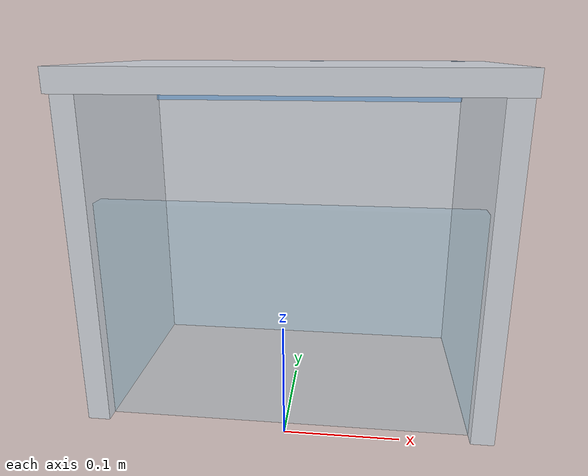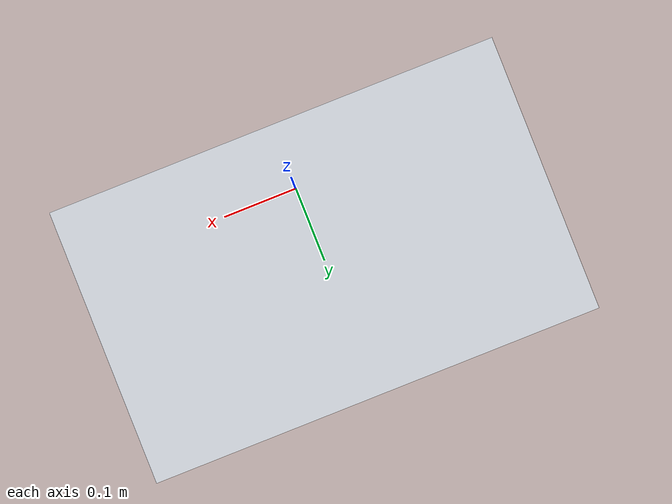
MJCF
<?xml version="1.0" encoding="utf-8"?>
<mujoco model="laminar_flow_hood">
  <compiler angle="radian" autolimits="true"/>
  <default>
    <default class="body"><geom contype="1" conaffinity="1"/></default>
  </default>
  <worldbody>
    <body name="base">
      <geom type="box" size="0.17 0.01 0.15" pos="0 0.20 0.15" rgba="0.85 0.87 0.9 1" class="body"/>
      <geom type="box" size="0.01 0.10 0.15" pos="-0.17 0.10 0.15" rgba="0.85 0.87 0.9 1" class="body"/>
      <geom type="box" size="0.01 0.10 0.15" pos="0.17 0.10 0.15" rgba="0.85 0.87 0.9 1" class="body"/>
      <geom type="box" size="0.18 0.11 0.01" pos="0 0.10 0.30" rgba="0.85 0.87 0.9 1" class="body"/>
      <geom type="box" size="0.16 0.005 0.02" pos="0 0.19 0.29" rgba="0.55 0.75 0.95 0.8" class="body"/>
      <body name="sash" pos="0 0.02 0.10">
        <joint name="sash_joint" type="slide" axis="0 0 1" range="0 0.20" damping="2" frictionloss="0.5"/>
  <geom type="box" size="0.165 0.008 0.10" pos="0 0 0" rgba="0.6 0.8 0.9 0.3" class="body"/>
      </body>
    </body>
  </worldbody>
</mujoco>
